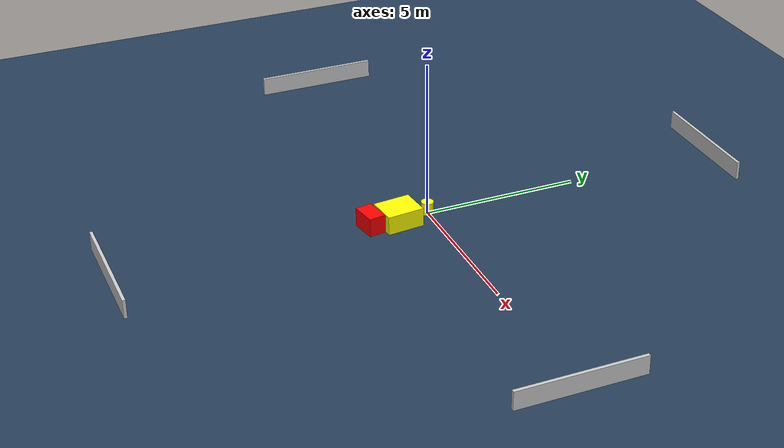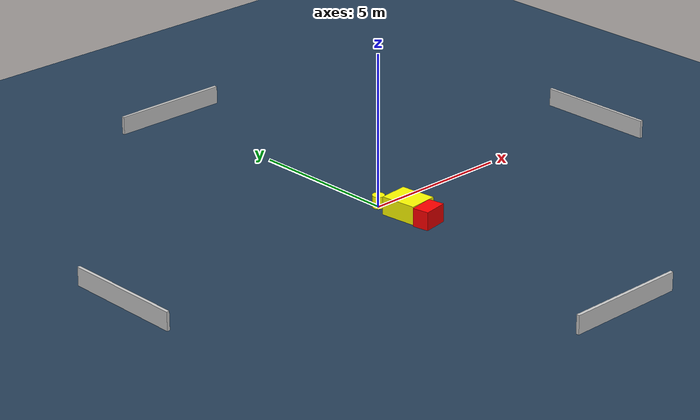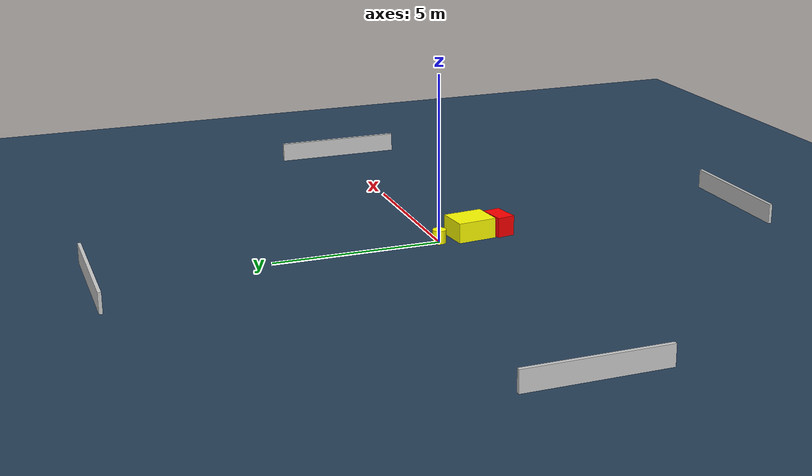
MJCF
<?xml version="1.0" ?>
<mujoco model="generated_environment">
  <option timestep="0.01" integrator="RK4" cone="elliptic"/>
  <default>
    <geom density="1"/>
  </default>
  <asset>
    <texture builtin="gradient" height="3072" name="skybox" rgb1="0.3 0.5 0.7" rgb2="0 0 0" type="skybox" width="512"/>
    <texture builtin="checker" height="300" name="groundplane" rgb1="0.2 0.3 0.4" rgb2="0.1 0.2 0.3" type="2d" width="300"/>
    <material name="groundplane" reflectance="0.2" texrepeat="5 5" texture="groundplane"/>
  </asset>
  <worldbody>
    <light dir="0 0 -1" directional="true" pos="0 0 1.5"/>
    <geom condim="3" friction="0.5 0.005 0.001" material="groundplane" name="floor" pos="0 0 0" size="0 0 0.05" type="plane"/>
    <body name="walls">
      <geom name="wall_1" condim="4" pos="-10.0 0.0 0.3" rgba="0.800000011920929 0.800000011920929 0.800000011920929 1.0" size="0.05 2.0 0.3" type="box"/>
      <geom name="wall_2" condim="4" pos="10.0 0.0 0.3" rgba="0.800000011920929 0.800000011920929 0.800000011920929 1.0" size="0.05 2.0 0.3" type="box"/>
      <geom name="wall_3" condim="4" pos="0.0 -10.0 0.3" rgba="0.800000011920929 0.800000011920929 0.800000011920929 1.0" size="2.0 0.05 0.3" type="box"/>
      <geom name="wall_4" condim="4" pos="0.0 10.0 0.3" rgba="0.800000011920929 0.800000011920929 0.800000011920929 1.0" size="2.0 0.05 0.3" type="box"/>
    </body>
    <body name="robot">
      <joint name="joint_x" type="slide" pos="0 0 0" axis="1 0 0"/>
      <joint name="joint_y" type="slide" pos="0 0 0" axis="0 1 0"/>
      <geom name="robot" type="cylinder" pos="0.0 0.0 0.2" size="0.2 0.2 0.0" mass="5.0" friction="1.0 0.005 0.0001" condim="4" rgba="1.0 1.0 0.0 1.0"/>
    </body>
    <body name="obstacle_1_movable">
      <geom name="obstacle_1_movable" condim="4" pos="0.23285635101245847 -1.0588347465448618 0.3" euler="0 0 185.7330654323783" friction="0.0 0.005 0.001" rgba="1.0 1.0 0.0 1.0" size="0.4875206545699436 0.5971334912559288 0.3" type="box" mass="0.1"/>
      <joint type="free"/>
    </body>
    <body name="obstacle_2_static">
      <geom name="obstacle_2_static" condim="4" pos="0.20144525206814767 -1.9660086736531424 0.3" euler="0 0 279.9589882637516" friction="0.0 0.005 0.001" rgba="1.0 0.0 0.0 1.0" size="0.2700875498061546 0.41551987793425194 0.3" type="box"/>
    </body>
  </worldbody>
  <actuator>
    <motor name="actuator_x" joint="joint_x" gear="1" ctrlrange="-1 1"/>
    <motor name="actuator_y" joint="joint_y" gear="1" ctrlrange="-1 1"/>
  </actuator>
</mujoco>
